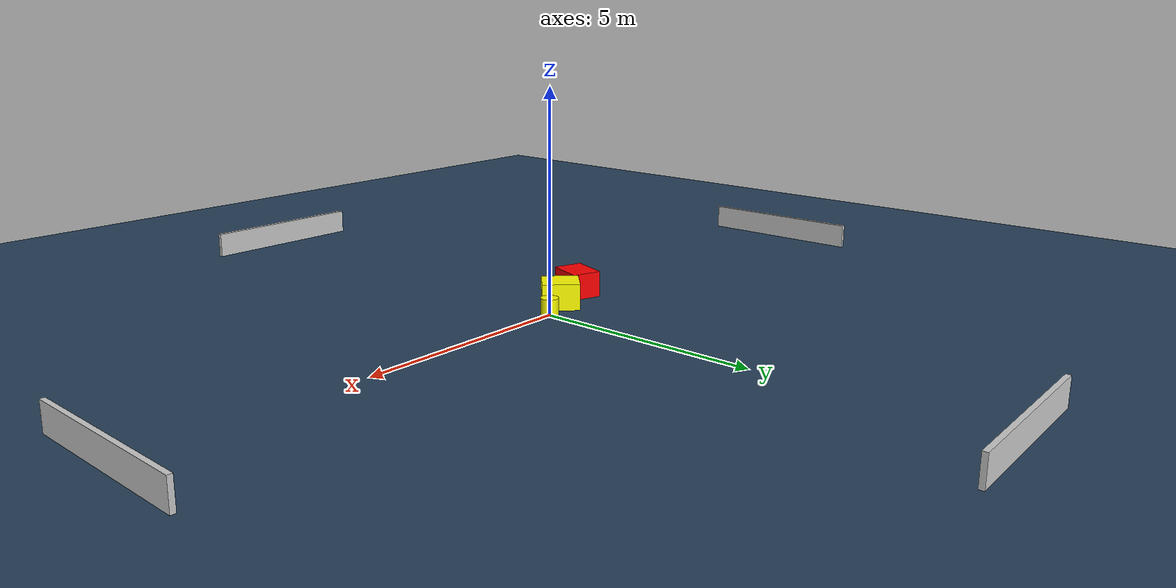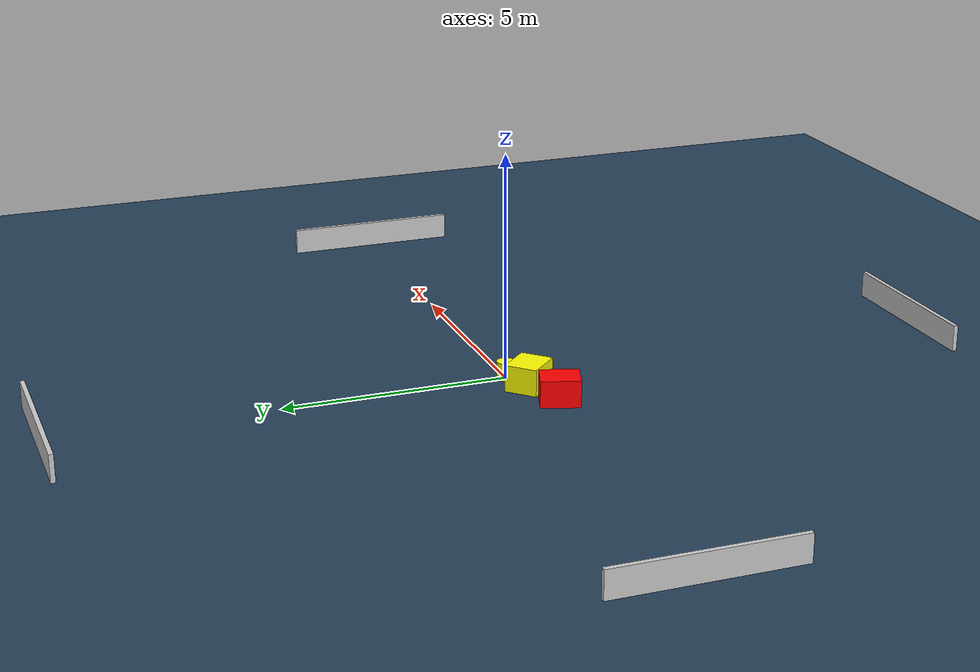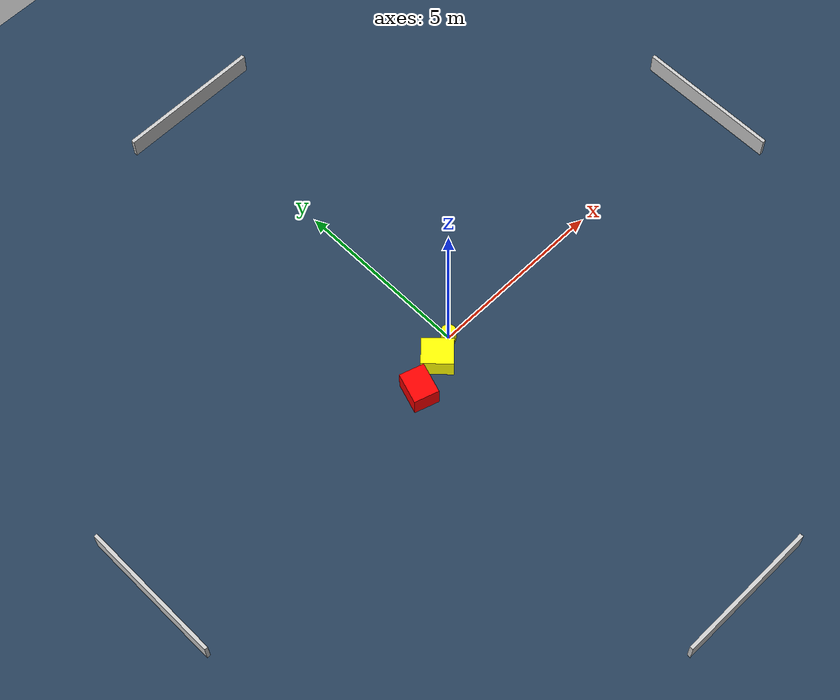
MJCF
<?xml version="1.0" ?>
<mujoco model="generated_environment">
  <option timestep="0.01" integrator="RK4" cone="elliptic"/>
  <default>
    <geom density="1"/>
  </default>
  <asset>
    <texture builtin="gradient" height="3072" name="skybox" rgb1="0.3 0.5 0.7" rgb2="0 0 0" type="skybox" width="512"/>
    <texture builtin="checker" height="300" name="groundplane" rgb1="0.2 0.3 0.4" rgb2="0.1 0.2 0.3" type="2d" width="300"/>
    <material name="groundplane" reflectance="0.2" texrepeat="5 5" texture="groundplane"/>
  </asset>
  <worldbody>
    <light dir="0 0 -1" directional="true" pos="0 0 1.5"/>
    <geom condim="3" friction="0.5 0.005 0.001" material="groundplane" name="floor" pos="0 0 0" size="0 0 0.05" type="plane"/>
    <body name="walls">
      <geom name="wall_1" condim="4" pos="-10.0 0.0 0.3" rgba="0.800000011920929 0.800000011920929 0.800000011920929 1.0" size="0.05 2.0 0.3" type="box"/>
      <geom name="wall_2" condim="4" pos="10.0 0.0 0.3" rgba="0.800000011920929 0.800000011920929 0.800000011920929 1.0" size="0.05 2.0 0.3" type="box"/>
      <geom name="wall_3" condim="4" pos="0.0 -10.0 0.3" rgba="0.800000011920929 0.800000011920929 0.800000011920929 1.0" size="2.0 0.05 0.3" type="box"/>
      <geom name="wall_4" condim="4" pos="0.0 10.0 0.3" rgba="0.800000011920929 0.800000011920929 0.800000011920929 1.0" size="2.0 0.05 0.3" type="box"/>
    </body>
    <body name="robot">
      <joint name="joint_x" type="slide" pos="0 0 0" axis="1 0 0"/>
      <joint name="joint_y" type="slide" pos="0 0 0" axis="0 1 0"/>
      <geom name="robot" type="cylinder" pos="0.0 0.0 0.2" size="0.2 0.2 0.0" mass="5.0" friction="1.0 0.005 0.0001" condim="4" rgba="1.0 1.0 0.0 1.0"/>
    </body>
    <body name="obstacle_1_movable">
      <geom name="obstacle_1_movable" condim="4" pos="-0.6746697918283896 -0.2747088348350842 0.3" euler="0 0 224.00679792157345" friction="0.0 0.005 0.001" rgba="1.0 1.0 0.0 1.0" size="0.36717474505782566 0.42438424980771083 0.3" type="box" mass="0.1"/>
      <joint type="free"/>
    </body>
    <body name="obstacle_2_static">
      <geom name="obstacle_2_static" condim="4" pos="-1.6426559082644836 -0.5952790368696828 0.3" euler="0 0 161.90393324933083" friction="0.0 0.005 0.001" rgba="1.0 0.0 0.0 1.0" size="0.3458160338445896 0.43096408656132845 0.3" type="box"/>
    </body>
  </worldbody>
  <actuator>
    <motor name="actuator_x" joint="joint_x" gear="1" ctrlrange="-1 1"/>
    <motor name="actuator_y" joint="joint_y" gear="1" ctrlrange="-1 1"/>
  </actuator>
</mujoco>
